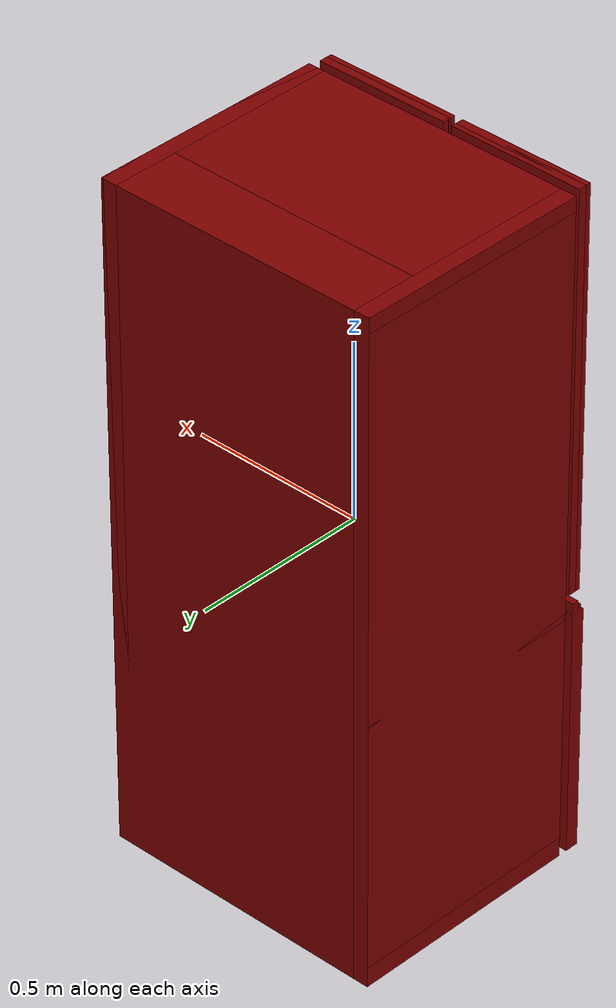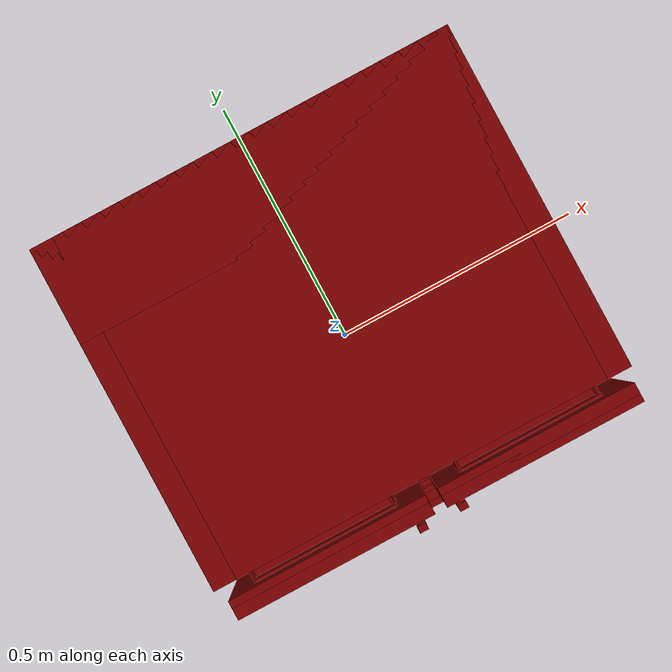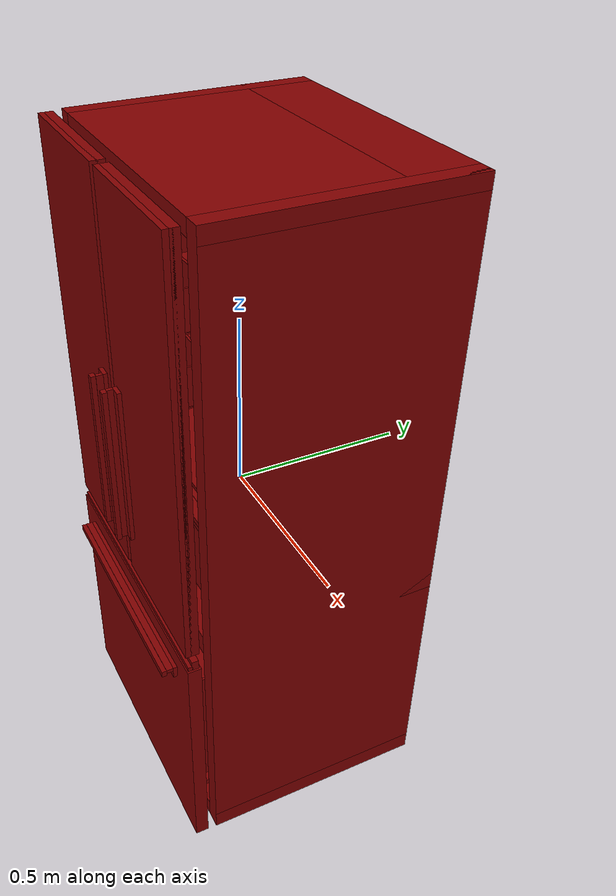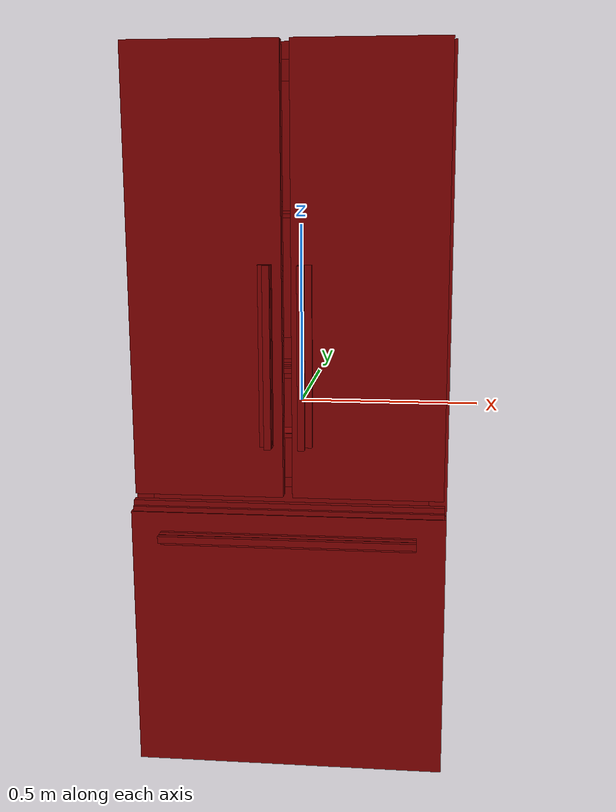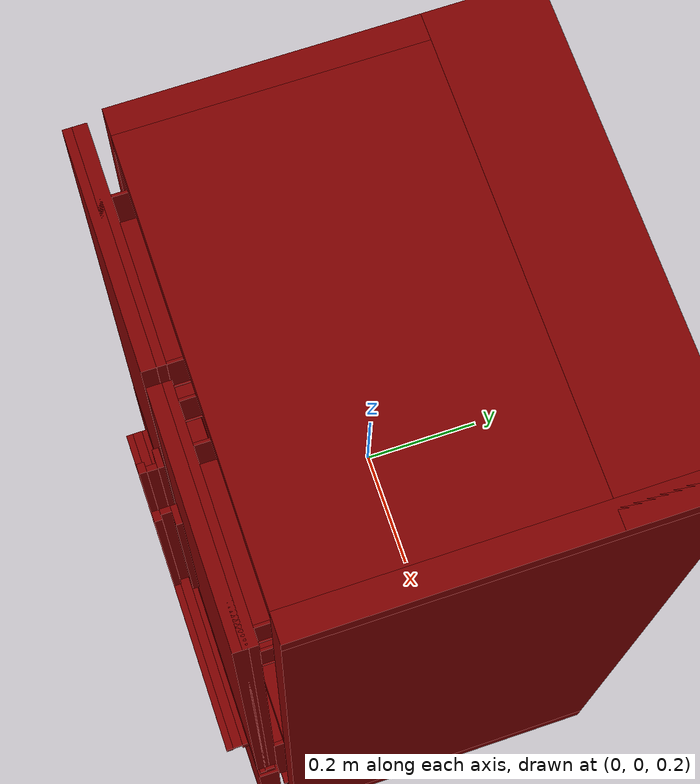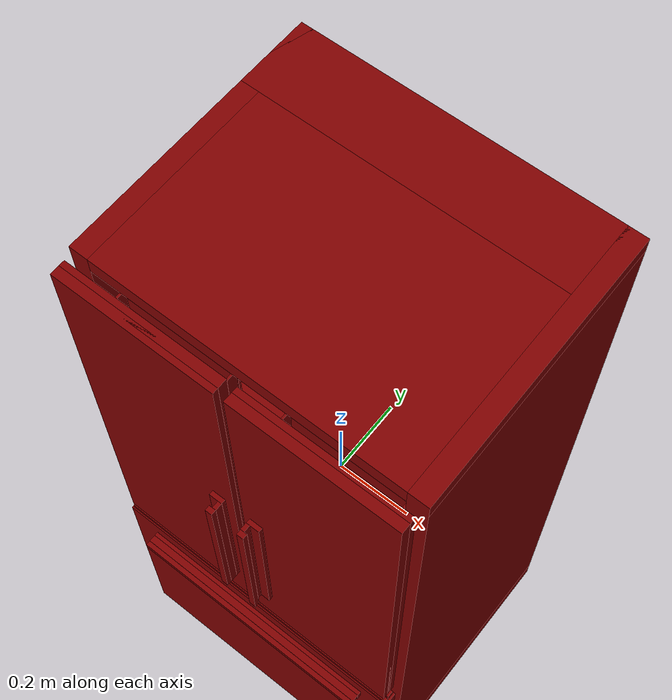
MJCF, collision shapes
<?xml version='1.0' encoding='UTF-8'?>
<mujoco model="model">
  <option timestep="0.002" gravity="0.0 0.0 -9.81"/>
  <compiler angle="radian"/>
  <asset>
    <mesh file="visuals/freezer0.obj" name="freezer0_vis"/>
    <mesh file="visuals/fridge_drawer0.obj" name="fridge_drawer0_vis"/>
    <mesh file="visuals/fridge_left_door.obj" name="fridge_left_door_vis"/>
    <mesh file="visuals/fridge_left_door_Clear.obj" name="fridge_left_door_Clear_vis"/>
    <mesh file="visuals/fridge_right_door.obj" name="fridge_right_door_vis"/>
    <mesh file="visuals/fridge_right_door_Clear.obj" name="fridge_right_door_Clear_vis"/>
    <mesh file="visuals/Body001.obj" name="Body001_vis"/>
    <mesh file="visuals/Body001_Clear.obj" name="Body001_Clear_vis"/>
    <texture file="visuals/T_BC001.png" name="Body001_material" type="2d"/>
    <material name="Body001_material" rgba="1 1 1 1.0" texture="Body001_material" shininess="0.5651465654373169" specular="2"/>
    <texture file="visuals/T_BC001.png" name="freezer0_material" type="2d"/>
    <material name="freezer0_material" rgba="1 1 1 1.0" texture="freezer0_material" shininess="0.5651465654373169" specular="2"/>
    <texture file="visuals/T_BC001.png" name="fridge_drawer0_material" type="2d"/>
    <material name="fridge_drawer0_material" rgba="1 1 1 1.0" texture="fridge_drawer0_material" shininess="0.5651465654373169" specular="0.3103448502657381"/>
    <texture file="visuals/T_BC001.png" name="fridge_left_door_material" type="2d"/>
    <material name="fridge_left_door_material" rgba="1 1 1 1.0" texture="fridge_left_door_material" shininess="0.5651465654373169" specular="2"/>
    <texture file="visuals/T_BC001.png" name="fridge_left_door_Clear_material" type="2d"/>
    <material name="fridge_left_door_Clear_material" rgba="1 1 1 0.7185935378074646" texture="fridge_left_door_Clear_material" shininess="0.5" specular="0.3103448502657381"/>
    <texture file="visuals/T_BC001.png" name="fridge_right_door_material" type="2d"/>
    <material name="fridge_right_door_material" rgba="1 1 1 1.0" texture="fridge_right_door_material" shininess="0.5651465654373169" specular="2"/>
    <texture file="visuals/T_BC001.png" name="fridge_right_door_Clear_material" type="2d"/>
    <material name="fridge_right_door_Clear_material" rgba="1 1 1 0.7185935378074646" texture="fridge_right_door_Clear_material" shininess="0.5" specular="0.3103448502657381"/>
    <texture file="visuals/T_BC001.png" name="Body001_Clear_material" type="2d"/>
    <material name="Body001_Clear_material" rgba="1 1 1 0.7185935378074646" texture="Body001_Clear_material" shininess="0.5" specular="0.3103448502657381"/>
  </asset>
  <default>
    <default class="visual">
      <geom conaffinity="0" contype="0" group="1" type="mesh"/>
    </default>
    <default class="collision">
      <geom group="0" rgba="0.5 0 0 0.5"/>
    </default>
    <default class="spawn">
      <geom group="0" rgba="1 1 1 0.5" contype="0" conaffinity="0"/>
      <site group="0" rgba="1 1 1 0.5"/>
    </default>
    <default class="region">
      <geom group="1" conaffinity="0" contype="0" rgba="0 1 0 0"/>
    </default>
  </default>
  <worldbody>
    <body>
      <body name="object">
        <geom mesh="Body001_vis" type="mesh" solimp="0.998 0.998 0.001" solref="0.001 1" friction="0.95 0.3 0.1" class="visual" material="Body001_material"/>
        <geom class="collision" type="box" pos="-0.39227133989334106 0.05474406108260155 -0.0004710908397100866" size="0.022729117423295975 0.3394109904766083 0.950001060962677" quat="1.0 0.0 0.0 0.0"/>
        <geom class="collision" type="box" pos="0.3911631107330322 0.05474404990673065 -0.0004710908397100866" size="0.023837359622120857 0.3394109904766083 0.950001060962677" quat="1.0 0.0 0.0 0.0"/>
        <geom class="collision" type="box" pos="1.280568540096283e-08 0.05474915727972984 -0.20703259110450745" size="0.415000319480896 0.3394036293029785 0.03042835369706154" quat="1.0 0.0 0.0 0.0"/>
        <geom class="collision" type="box" pos="1.3969838619232178e-08 0.05474656820297241 -0.9224189519882202" size="0.41500338912010193 0.33940625190734863 0.028052954003214836" quat="1.0 0.0 0.0 0.0"/>
        <geom class="collision" type="box" pos="1.3969838619232178e-08 0.05474652349948883 0.9286476373672485" size="0.41500332951545715 0.3394063115119934 0.02088218554854393" quat="1.0 0.0 0.0 0.0"/>
        <geom class="collision" type="box" pos="-2.2584572434425354e-08 0.2999446392059326 -0.0004710378125309944" size="0.4149978458881378 0.09421038627624512 0.9500010013580322" quat="1.0 0.0 0.0 0.0"/>
        <geom class="collision" type="box" pos="1.907348590179936e-08 -0.011328396387398243 0.5301669836044312" size="0.3689470589160919 0.1993916630744934 0.00500008137896657" quat="1.0 0.0 0.0 0.0"/>
        <geom class="collision" type="box" pos="1.907348590179936e-08 -0.011328366585075855 0.1502426266670227" size="0.3689470589160919 0.1993916630744934 0.00500008137896657" quat="1.0 0.0 0.0 0.0"/>
        <geom class="collision" type="box" pos="0.35758131742477417 -0.04185579717159271 -0.7834590673446655" size="0.01360534131526947 0.2527852952480316 0.008317296393215656" quat="1.0 0.0 0.0 0.0"/>
        <geom class="collision" type="box" pos="-0.3576083779335022 -0.04185579717159271 -0.7834590673446655" size="0.01360534131526947 0.2527852952480316 0.008317297324538231" quat="1.0 0.0 0.0 0.0"/>
        <body name="freezer0">
          <geom class="region" name="reg_freezer0" type="box" pos="-0.00047992169857025146 -0.05982649326324463 -0.5627147853374481" size="0.3359756747484207 0.24532584643363953 0.1957723925113678"/>
          <joint axis="0.0 -1.0 0.0" pos="-0.0012154579162597656 -0.09398239850997925 -0.5798619985580444" limited="true" name="freezer0_door_joint" range="0.0 0.4" type="slide" damping="1" frictionloss="1" armature=".01" stiffness="0.05"/>
          <geom mesh="freezer0_vis" type="mesh" solimp="0.998 0.998 0.001" solref="0.001 1" friction="0.95 0.3 0.1" class="visual" material="freezer0_material"/>
          <geom class="collision" type="box" pos="-0.0008891969919204712 -0.32981547713279724 -0.5935872793197632" size="0.4141390919685364 0.019321383908391 0.3568846583366394" quat="1.0 0.0 0.0 0.0" name="freezer0_door_main"/>
          <geom class="collision" type="box" pos="-0.001215711236000061 -0.32507675886154175 -0.224431112408638" size="0.409322589635849 0.009542668238282204 0.0153754698112607" quat="1.0 0.0 0.0 0.0"/>
          <geom class="collision" type="box" pos="-0.0012157055316492915 -0.3390405774116516 -0.2314324975013733" size="0.409322589635849 0.006139228120446205 0.008009843528270721" quat="1.0 0.0 0.0 0.0"/>
          <geom class="collision" type="box" pos="-0.0012156275333836675 -0.333525687456131 -0.23534998297691345" size="0.40932416915893555 0.0005191449890844524 0.004614440258592367" quat="1.0 0.0 0.0 0.0"/>
          <geom class="collision" type="box" pos="0.0009714923799037933 -0.3698027729988098 -0.2932438850402832" size="0.33625397086143494 0.009555828757584095 0.005156020168215036" quat="1.0 0.0 0.0 0.0" name="freezer0_door_handle_1"/>
          <geom class="collision" type="box" pos="0.0009714514017105103 -0.38610073924064636 -0.29762113094329834" size="0.33625471591949463 0.006859722081571817 0.008949918672442436" quat="1.0 0.0 0.0 0.0" name="freezer0_door_handle_main"/>
          <geom class="collision" type="box" pos="0.0009714625775814056 -0.35022643208503723 -0.3054441809654236" size="0.33625471591949463 0.010662556625902653 0.01717992126941681" quat="1.0 0.0 0.0 0.0" name="freezer0_door_handle_2"/>
          <geom class="collision" type="box" pos="0.0024366192519664764 0.20238611102104187 -0.5663059949874878" size="0.3459130525588989 0.0033920349087566137 0.20452946424484253" quat="1.0 0.0 0.0 0.0"/>
          <geom class="collision" type="box" pos="-0.3462103009223938 -0.061954278498888016 -0.5663059949874878" size="0.004088173154741526 0.26058658957481384 0.20452925562858582" quat="1.0 0.0 0.0 0.0"/>
          <geom class="collision" type="box" pos="0.34475740790367126 -0.061954278498888016 -0.5663059949874878" size="0.0037448182702064514 0.2605862021446228 0.20452894270420074" quat="1.0 0.0 0.0 0.0"/>
          <geom class="collision" type="box" pos="-0.0009996322914958 -0.06195427104830742 -0.7673805952072144" size="0.3459119200706482 0.26058581471443176 0.003200327744707465" quat="1.0 0.0 0.0 0.0"/>
        </body>
        <body name="fridge_drawer0">
          <geom class="region" name="reg_fridge_drawer0" type="box" pos="-0.00048075616359710693 -0.01052907109260559 -0.019546829164028168" size="0.33597650921344757 0.18407726085186005 0.12966052240133286"/>
          <joint axis="0.0 -1.0 0.0" pos="-0.001167207956314087 -0.02784685418009758 -0.01833232492208481" limited="true" name="fridge_drawer0_joint" range="0.0 0.4" type="slide" damping="1" frictionloss="1" armature=".01" stiffness="0.05"/>
          <geom mesh="fridge_drawer0_vis" type="mesh" solimp="0.998 0.998 0.001" solref="0.001 1" friction="0.95 0.3 0.1" class="visual" material="fridge_drawer0_material"/>
          <geom class="collision" type="box" pos="0.20843300223350525 -0.21116550266742706 -0.016208797693252563" size="0.14094378054141998 0.010428237728774548 0.15302202105522156" quat="1.0 0.0 0.0 0.0"/>
          <geom class="collision" type="box" pos="-0.004416878800839186 -0.21116550266742706 0.03877970948815346" size="0.07190641760826111 0.010428213514387608 0.09803342074155807" quat="1.0 0.0 0.0 0.0"/>
          <geom class="collision" type="box" pos="-0.004416878800839186 -0.21116550266742706 -0.11041654646396637" size="0.0719064250588417 0.010428208857774734 0.05860121548175812" quat="1.0 0.0 0.0 0.0"/>
          <geom class="collision" type="box" pos="-0.21222737431526184 -0.21116550266742706 -0.016208797693252563" size="0.13590455055236816 0.01042824238538742 0.15302208065986633" quat="1.0 0.0 0.0 0.0"/>
          <geom class="collision" type="box" pos="-0.004416897892951965 -0.2110261768102646 -0.015276762656867504" size="0.07190626859664917 0.005427331663668156 0.033017951995134354" quat="0.9871617555618286 -0.15972371399402618 0.0 0.0"/>
          <geom class="collision" type="box" pos="-0.0009996322914958 -0.009495828300714493 -0.15835800766944885" size="0.3459117114543915 0.19932322204113007 0.0032003202941268682" quat="1.0 0.0 0.0 0.0"/>
          <geom class="collision" type="box" pos="0.34475740790367126 -0.009495824575424194 -0.023135758936405182" size="0.0037448136135935783 0.19932356476783752 0.1386764943599701" quat="1.0 0.0 0.0 0.0"/>
          <geom class="collision" type="box" pos="-0.3462103009223938 -0.009495824575424194 -0.023135758936405182" size="0.004088167566806078 0.1993238478899002 0.13867676258087158" quat="1.0 0.0 0.0 0.0"/>
          <geom class="collision" type="box" pos="-0.004416897892951965 -0.2025282233953476 -0.016591282561421394" size="0.07190626859664917 0.0022927967365831137 0.033525124192237854" quat="1.0 0.0 0.0 0.0"/>
          <geom class="collision" type="box" pos="0.0024366192519664764 0.193582221865654 -0.023135755211114883" size="0.3459126055240631 0.0033920290879905224 0.1386769562959671" quat="1.0 0.0 0.0 0.0"/>
          <geom class="collision" type="box" pos="-0.0009487569332122803 -0.24762417376041412 0.11647733300924301" size="0.34894639253616333 0.005588192492723465 0.0061883386224508286" quat="1.0 0.0 0.0 0.0"/>
          <geom class="collision" type="box" pos="-0.0009487569332122803 -0.23418964445590973 0.12933951616287231" size="0.34894639253616333 0.01889035291969776 0.0072239357978105545" quat="1.0 0.0 0.0 0.0"/>
        </body>
        <body name="fridge_left_door">
          <joint axis="0.0 0.0 -1.0" pos="-0.3918018043041229 -0.3276289999485016 0.345002681016922" limited="true" name="fridge_left_door_joint" range="0.0 1.5707963267948966" type="hinge" damping="1" frictionloss="1" armature=".01" stiffness="0.05"/>
          <geom mesh="fridge_left_door_vis" type="mesh" solimp="0.998 0.998 0.001" solref="0.001 1" friction="0.95 0.3 0.1" class="visual" material="fridge_left_door_material"/>
          <geom class="collision" type="box" pos="-0.20516915619373322 -0.2345476895570755 0.7477937936782837" size="0.14340534806251526 0.002978686476126313 0.04913042113184929" quat="1.0 0.0 0.0 0.0"/>
          <geom class="collision" type="box" pos="-0.20516915619373322 -0.272113174200058 0.6978591680526733" size="0.14340530335903168 0.04048322141170502 0.0018282029777765274" quat="1.0 0.0 0.0 0.0"/>
          <geom class="collision" type="box" pos="-0.06690992414951324 -0.272113174200058 0.7471681833267212" size="0.0023787938989698887 0.04048225283622742 0.04967685416340828" quat="1.0 0.0 0.0 0.0"/>
          <geom class="collision" type="box" pos="-0.3497503995895386 -0.272113174200058 0.7471681833267212" size="0.0023787938989698887 0.04048225283622742 0.04967685416340828" quat="1.0 0.0 0.0 0.0"/>
          <geom class="collision" type="box" pos="-0.20516915619373322 -0.30993375182151794 0.7477937936782837" size="0.14340534806251526 0.0029786808881908655 0.04913032799959183" quat="1.0 0.0 0.0 0.0"/>
          <geom class="collision" type="box" pos="-0.20516915619373322 -0.2359030693769455 0.5688835382461548" size="0.14340534806251526 0.0029786790255457163 0.04913030564785004" quat="1.0 0.0 0.0 0.0"/>
          <geom class="collision" type="box" pos="-0.20516915619373322 -0.273468554019928 0.518949031829834" size="0.14340530335903168 0.040483150631189346 0.001828206004574895" quat="1.0 0.0 0.0 0.0"/>
          <geom class="collision" type="box" pos="-0.06690992414951324 -0.273468554019928 0.5682579278945923" size="0.0023787938989698887 0.04048225283622742 0.04967685416340828" quat="1.0 0.0 0.0 0.0"/>
          <geom class="collision" type="box" pos="-0.3497503995895386 -0.273468554019928 0.5682579278945923" size="0.0023787938989698887 0.04048225283622742 0.04967685416340828" quat="1.0 0.0 0.0 0.0"/>
          <geom class="collision" type="box" pos="-0.20516915619373322 -0.31128913164138794 0.5688835382461548" size="0.14340534806251526 0.0029786734376102686 0.049130212515592575" quat="1.0 0.0 0.0 0.0"/>
          <geom class="collision" type="box" pos="-0.2051691710948944 -0.33751267194747925 0.38122427463531494" size="0.19552117586135864 0.01162412203848362 0.5683032870292664" quat="1.0 0.0 0.0 0.0" name="fridge_left_door_main"/>
          <geom class="collision" type="box" pos="-0.05077379569411278 -0.35022643208503723 0.18183356523513794" size="0.01717997156083584 0.010662556625902653 0.2320089340209961" quat="1.0 0.0 0.0 0.0" name="fridge_left_door_handle_1"/>
          <geom class="collision" type="box" pos="-0.04295074939727783 -0.38610073924064636 0.18183359503746033" size="0.00894989725202322 0.006859723012894392 0.23200887441635132" quat="1.0 0.0 0.0 0.0" name="fridge_left_door_handle_main"/>
          <geom class="collision" type="box" pos="-0.03857354819774628 -0.3698027729988098 0.18183358013629913" size="0.005156084895133972 0.009555828757584095 0.2320074588060379" quat="1.0 0.0 0.0 0.0" name="fridge_left_door_handle_2"/>
          <geom class="collision" type="box" pos="-0.2051691710948944 -0.3229532241821289 0.38122427463531494" size="0.19552117586135864 0.01162412203848362 0.5683032870292664" quat="1.0 0.0 0.0 0.0"/>
          <body name="fridge_left_door_Clear">
            <geom mesh="fridge_left_door_Clear_vis" type="mesh" solimp="0.998 0.998 0.001" solref="0.001 1" friction="0.95 0.3 0.1" class="visual" material="fridge_left_door_Clear_material"/>
            <geom class="collision" type="box" pos="-0.20516915619373322 -0.2345476895570755 0.7477937936782837" size="0.14340534806251526 0.002978686476126313 0.04913042113184929" quat="1.0 0.0 0.0 0.0"/>
            <geom class="collision" type="box" pos="-0.20516915619373322 -0.272113174200058 0.6978591680526733" size="0.14340530335903168 0.04048322141170502 0.0018282029777765274" quat="1.0 0.0 0.0 0.0"/>
            <geom class="collision" type="box" pos="-0.06690992414951324 -0.272113174200058 0.7471681833267212" size="0.0023787938989698887 0.04048225283622742 0.04967685416340828" quat="1.0 0.0 0.0 0.0"/>
            <geom class="collision" type="box" pos="-0.3497503995895386 -0.272113174200058 0.7471681833267212" size="0.0023787938989698887 0.04048225283622742 0.04967685416340828" quat="1.0 0.0 0.0 0.0"/>
            <geom class="collision" type="box" pos="-0.20516915619373322 -0.30993375182151794 0.7477937936782837" size="0.14340534806251526 0.0029786808881908655 0.04913032799959183" quat="1.0 0.0 0.0 0.0"/>
            <geom class="collision" type="box" pos="-0.20516915619373322 -0.2359030693769455 0.5688835382461548" size="0.14340534806251526 0.0029786790255457163 0.04913030564785004" quat="1.0 0.0 0.0 0.0"/>
            <geom class="collision" type="box" pos="-0.20516915619373322 -0.273468554019928 0.518949031829834" size="0.14340530335903168 0.040483150631189346 0.001828206004574895" quat="1.0 0.0 0.0 0.0"/>
            <geom class="collision" type="box" pos="-0.06690992414951324 -0.273468554019928 0.5682579278945923" size="0.0023787938989698887 0.04048225283622742 0.04967685416340828" quat="1.0 0.0 0.0 0.0"/>
            <geom class="collision" type="box" pos="-0.3497503995895386 -0.273468554019928 0.5682579278945923" size="0.0023787938989698887 0.04048225283622742 0.04967685416340828" quat="1.0 0.0 0.0 0.0"/>
            <geom class="collision" type="box" pos="-0.20516915619373322 -0.31128913164138794 0.5688835382461548" size="0.14340534806251526 0.0029786734376102686 0.049130212515592575" quat="1.0 0.0 0.0 0.0"/>
          </body>
        </body>
        <body name="fridge_right_door">
          <joint axis="0.0 0.0 1.0" pos="0.3914358615875244 -0.328512966632843 0.3450026214122772" limited="true" name="fridge_right_door_joint" range="0.0 1.5707963267948966" type="hinge" damping="1" frictionloss="1" armature=".01" stiffness="0.05"/>
          <geom mesh="fridge_right_door_vis" type="mesh" solimp="0.998 0.998 0.001" solref="0.001 1" friction="0.95 0.3 0.1" class="visual" material="fridge_right_door_material"/>
          <geom class="collision" type="box" pos="0.20989829301834106 -0.2345476895570755 0.7477937936782837" size="0.14340534806251526 0.00297866971231997 0.049130164086818695" quat="1.0 0.0 0.0 0.0"/>
          <geom class="collision" type="box" pos="0.20989829301834106 -0.2721131443977356 0.6978591680526733" size="0.14340530335903168 0.04048306494951248 0.0018282096134498715" quat="1.0 0.0 0.0 0.0"/>
          <geom class="collision" type="box" pos="0.34815752506256104 -0.272113174200058 0.7471681833267212" size="0.0023787938989698887 0.04048225283622742 0.04967685416340828" quat="1.0 0.0 0.0 0.0"/>
          <geom class="collision" type="box" pos="0.0653170496225357 -0.272113174200058 0.7471681833267212" size="0.0023787938989698887 0.04048225283622742 0.04967685416340828" quat="1.0 0.0 0.0 0.0"/>
          <geom class="collision" type="box" pos="0.20989829301834106 -0.30993375182151794 0.7477937936782837" size="0.14340534806251526 0.0029786655213683844 0.049130070954561234" quat="1.0 0.0 0.0 0.0"/>
          <geom class="collision" type="box" pos="0.20989829301834106 -0.2359030693769455 0.5688835382461548" size="0.14340534806251526 0.002978663658723235 0.04913004860281944" quat="1.0 0.0 0.0 0.0"/>
          <geom class="collision" type="box" pos="0.20989829301834106 -0.273468554019928 0.518949031829834" size="0.14340530335903168 0.04048299789428711 0.001828212640248239" quat="1.0 0.0 0.0 0.0"/>
          <geom class="collision" type="box" pos="0.34815752506256104 -0.273468554019928 0.5682579278945923" size="0.0023787938989698887 0.04048225283622742 0.04967685416340828" quat="1.0 0.0 0.0 0.0"/>
          <geom class="collision" type="box" pos="0.0653170496225357 -0.273468554019928 0.5682579278945923" size="0.0023787938989698887 0.04048225283622742 0.04967685416340828" quat="1.0 0.0 0.0 0.0"/>
          <geom class="collision" type="box" pos="0.20989829301834106 -0.31128913164138794 0.5688835382461548" size="0.14340534806251526 0.0029786580707877874 0.04912995174527168" quat="1.0 0.0 0.0 0.0"/>
          <geom class="collision" type="box" pos="0.20989829301834106 -0.33751243352890015 0.3812237083911896" size="0.19552117586135864 0.011623946018517017 0.5683045387268066" quat="1.0 0.0 0.0 0.0" name="fridge_right_door_main"/>
          <geom class="collision" type="box" pos="0.0507730208337307 -0.35022637248039246 0.18183356523513794" size="0.01717989705502987 0.010662556625902653 0.2320088893175125" quat="1.0 0.0 0.0 0.0" name="fridge_right_door_handle_1"/>
          <geom class="collision" type="box" pos="0.04294997453689575 -0.3861006796360016 0.18183359503746033" size="0.008949832990765572 0.006859723012894392 0.23200887441635132" quat="1.0 0.0 0.0 0.0" name="fridge_right_door_handle_main"/>
          <geom class="collision" type="box" pos="0.0385727733373642 -0.36980271339416504 0.18183355033397675" size="0.0051560113206505775 0.009555828757584095 0.2320077121257782" quat="1.0 0.0 0.0 0.0" name="fridge_right_door_handle_2"/>
          <geom class="collision" type="box" pos="0.20989829301834106 -0.3229529857635498 0.3812237083911896" size="0.19552117586135864 0.011623946018517017 0.5683045387268066" quat="1.0 0.0 0.0 0.0"/>
          <body name="fridge_right_door_Clear">
            <geom mesh="fridge_right_door_Clear_vis" type="mesh" solimp="0.998 0.998 0.001" solref="0.001 1" friction="0.95 0.3 0.1" class="visual" material="fridge_right_door_Clear_material"/>
            <geom class="collision" type="box" pos="0.20989829301834106 -0.2345476895570755 0.7477937936782837" size="0.14340534806251526 0.00297866971231997 0.049130164086818695" quat="1.0 0.0 0.0 0.0"/>
            <geom class="collision" type="box" pos="0.20989829301834106 -0.2721131443977356 0.6978591680526733" size="0.14340530335903168 0.04048306494951248 0.0018282096134498715" quat="1.0 0.0 0.0 0.0"/>
            <geom class="collision" type="box" pos="0.34815752506256104 -0.272113174200058 0.7471681833267212" size="0.0023787938989698887 0.04048225283622742 0.04967685416340828" quat="1.0 0.0 0.0 0.0"/>
            <geom class="collision" type="box" pos="0.0653170496225357 -0.272113174200058 0.7471681833267212" size="0.0023787938989698887 0.04048225283622742 0.04967685416340828" quat="1.0 0.0 0.0 0.0"/>
            <geom class="collision" type="box" pos="0.20989829301834106 -0.30993375182151794 0.7477937936782837" size="0.14340534806251526 0.0029786655213683844 0.049130070954561234" quat="1.0 0.0 0.0 0.0"/>
            <geom class="collision" type="box" pos="0.20989829301834106 -0.2359030693769455 0.5688835382461548" size="0.14340534806251526 0.002978663658723235 0.04913004860281944" quat="1.0 0.0 0.0 0.0"/>
            <geom class="collision" type="box" pos="0.20989829301834106 -0.273468554019928 0.518949031829834" size="0.14340530335903168 0.04048299789428711 0.001828212640248239" quat="1.0 0.0 0.0 0.0"/>
            <geom class="collision" type="box" pos="0.34815752506256104 -0.273468554019928 0.5682579278945923" size="0.0023787938989698887 0.04048225283622742 0.04967685416340828" quat="1.0 0.0 0.0 0.0"/>
            <geom class="collision" type="box" pos="0.0653170496225357 -0.273468554019928 0.5682579278945923" size="0.0023787938989698887 0.04048225283622742 0.04967685416340828" quat="1.0 0.0 0.0 0.0"/>
            <geom class="collision" type="box" pos="0.20989829301834106 -0.31128913164138794 0.5688835382461548" size="0.14340534806251526 0.0029786580707877874 0.04912995174527168" quat="1.0 0.0 0.0 0.0"/>
          </body>
        </body>
        <body name="Body001_Clear">
          <geom mesh="Body001_Clear_vis" type="mesh" solimp="0.998 0.998 0.001" solref="0.001 1" friction="0.95 0.3 0.1" class="visual" material="Body001_Clear_material"/>
          <geom class="collision" type="box" pos="1.907348590179936e-08 -0.011328396387398243 0.5301669836044312" size="0.3689470589160919 0.1993916630744934 0.00500008137896657" quat="1.0 0.0 0.0 0.0"/>
          <geom class="collision" type="box" pos="1.907348590179936e-08 -0.011328366585075855 0.1502426266670227" size="0.3689470589160919 0.1993916630744934 0.00500008137896657" quat="1.0 0.0 0.0 0.0"/>
        </body>
        <geom class="region" name="reg_fridge_shelf0" type="box" pos="-0.00047872960567474365 -0.011815585196018219 0.3404042720794678" size="0.36053621566295624 0.19365516847372055 0.17964763736724854"/>
        <geom class="region" name="reg_fridge_shelf1" type="box" pos="-0.0005102306604385376 -0.011815585196018219 0.7201476097106934" size="0.36048552191257477 0.19365516847372055 0.1794449815750122"/>
        <geom class="region" name="reg_main" type="box" pos="0.0 0.022509068250656128 0.0" size="0.416000319480896 0.3726459572315216 0.951472354888916"/>
      </body>
    </body>
  </worldbody>
  <actuator>
    <motor name="freezer0_door_joint_actuator" joint="freezer0_door_joint" gear="50"/>
    <motor name="fridge_drawer0_joint_actuator" joint="fridge_drawer0_joint" gear="50"/>
    <motor name="fridge_left_door_joint_actuator" joint="fridge_left_door_joint" gear="50"/>
    <motor name="fridge_right_door_joint_actuator" joint="fridge_right_door_joint" gear="50"/>
  </actuator>
</mujoco>
